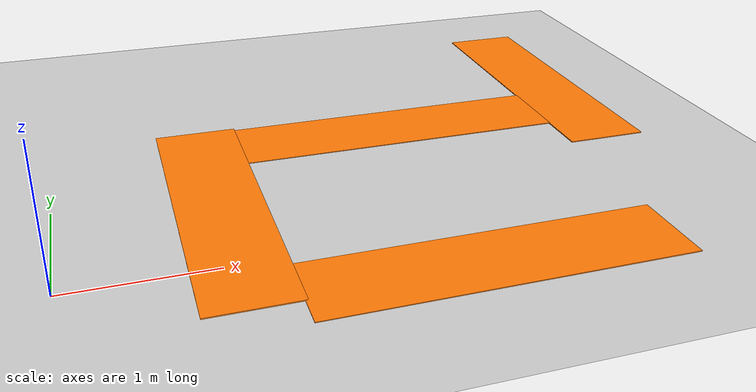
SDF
<sdf version="1.6">
 <world name="default">
  <light name="sun" type="directional">
   <pose>0 0 10 0 -0 0</pose>
   <diffuse>0.8 0.8 0.8 1</diffuse>
   <specular>0.2 0.2 0.2 1</specular>
   <attenuation>
    <range>1000</range>
    <constant>0.9</constant>
    <linear>0.01</linear>
    <quadratic>0.001</quadratic>
   </attenuation>
   <direction>-0.5 0.1 -0.9</direction>
  </light>
  <model name="ground_plane">
   <static>1</static>
   <link name="link">
    <collision name="collision">
     <geometry><plane><normal>0 0 1</normal><size>100 100</size></plane></geometry>
     <surface>
      <contact><collide_bitmask>65535</collide_bitmask></contact>
      <friction><ode><mu>100</mu><mu2>50</mu2></ode></friction>
     </surface>
    </collision>
    <visual name="visual">
     <cast_shadows>0</cast_shadows>
     <geometry><plane><normal>0 0 1</normal><size>100 100</size></plane></geometry>
     <material>
      <script><uri>file://media/materials/scripts/gazebo.material</uri><name>Gazebo/Grey</name></script>
     </material>
    </visual>
   </link>
  </model>
  <gravity>0 0 -9.8</gravity>
  <magnetic_field>6e-06 2.3e-05 -4.2e-05</magnetic_field>
  <atmosphere type="adiabatic"/>
  <physics name="default_physics" default="0" type="ode">
   <max_step_size>0.001</max_step_size>
   <real_time_factor>1</real_time_factor>
   <real_time_update_rate>1000</real_time_update_rate>
  </physics>
  <scene><ambient>0.4 0.4 0.4 1</ambient><background>0.7 0.7 0.7 1</background><shadows>1</shadows></scene>
  <audio><device>default</device></audio>
  <spherical_coordinates>
   <surface_model>EARTH_WGS84</surface_model>
   <latitude_deg>0</latitude_deg>
   <longitude_deg>0</longitude_deg>
   <elevation>0</elevation>
   <heading_deg>0</heading_deg>
  </spherical_coordinates>
  <model name="wall2">
   <pose>1.1017 2.02407 -0.01 1.57 -0 0</pose>
   <link name="Wall_2">
    <collision name="Wall_2_Collision">
     <geometry><box><size>0.62 0.02 2.5</size></box></geometry>
     <pose>0 0 1.25 0 -0 0</pose>
    </collision>
    <visual name="Wall_2_Visual">
     <pose>0 0 1.25 0 -0 0</pose>
     <geometry><box><size>0.62 0.02 2.5</size></box></geometry>
     <material>
      <script><uri>file://media/materials/scripts/gazebo.material</uri><name>Gazebo/Grey</name></script>
      <ambient>0.996078 0.47451 0.0196078 1</ambient>
     </material>
     <meta><layer>0</layer></meta>
    </visual>
   </link>
   <static>1</static>
  </model>
  <model name="wall2_0">
   <pose>1.39224 -0.385267 -0.01 1.57 -0 1.5705</pose>
   <link name="Wall_2">
    <collision name="Wall_2_Collision">
     <geometry><box><size>0.62 0.02 2.5</size></box></geometry>
     <pose>0 0 1.25 0 -0 0</pose>
    </collision>
    <visual name="Wall_2_Visual">
     <pose>0 0 1.25 0 -0 0</pose>
     <geometry><box><size>0.62 0.02 2.5</size></box></geometry>
     <material>
      <script><uri>file://media/materials/scripts/gazebo.material</uri><name>Gazebo/Grey</name></script>
      <ambient>0.996078 0.47451 0.0196078 1</ambient>
     </material>
     <meta><layer>0</layer></meta>
    </visual>
   </link>
   <static>1</static>
  </model>
  <model name="wall2_1">
   <pose>1.40703 1.68141 -0.01 1.57 -0 1.5705</pose>
   <link name="Wall_2">
    <collision name="Wall_2_Collision">
     <geometry><box><size>0.62 0.02 2.5</size></box></geometry>
     <pose>0 0 1.25 0 -0 0</pose>
    </collision>
    <visual name="Wall_2_Visual">
     <pose>0 0 1.25 0 -0 0</pose>
     <geometry><box><size>0.62 0.02 2.5</size></box></geometry>
     <material>
      <script><uri>file://media/materials/scripts/gazebo.material</uri><name>Gazebo/Grey</name></script>
      <ambient>0.996078 0.47451 0.0196078 1</ambient>
     </material>
     <meta><layer>0</layer></meta>
    </visual>
   </link>
   <static>1</static>
  </model>
  <model name="wall2_2">
   <pose>4.21129 3.48489 -0.01 1.57 -0 0</pose>
   <link name="Wall_2">
    <collision name="Wall_2_Collision">
     <geometry><box><size>0.62 0.02 2.5</size></box></geometry>
     <pose>0 0 1.25 0 -0 0</pose>
    </collision>
    <visual name="Wall_2_Visual">
     <pose>0 0 1.25 0 -0 0</pose>
     <geometry><box><size>0.62 0.02 2.5</size></box></geometry>
     <material>
      <script><uri>file://media/materials/scripts/gazebo.material</uri><name>Gazebo/Grey</name></script>
      <ambient>0.996078 0.47451 0.0196078 1</ambient>
     </material>
     <meta><layer>0</layer></meta>
    </visual>
   </link>
   <static>1</static>
  </model>
 </world>
</sdf>
